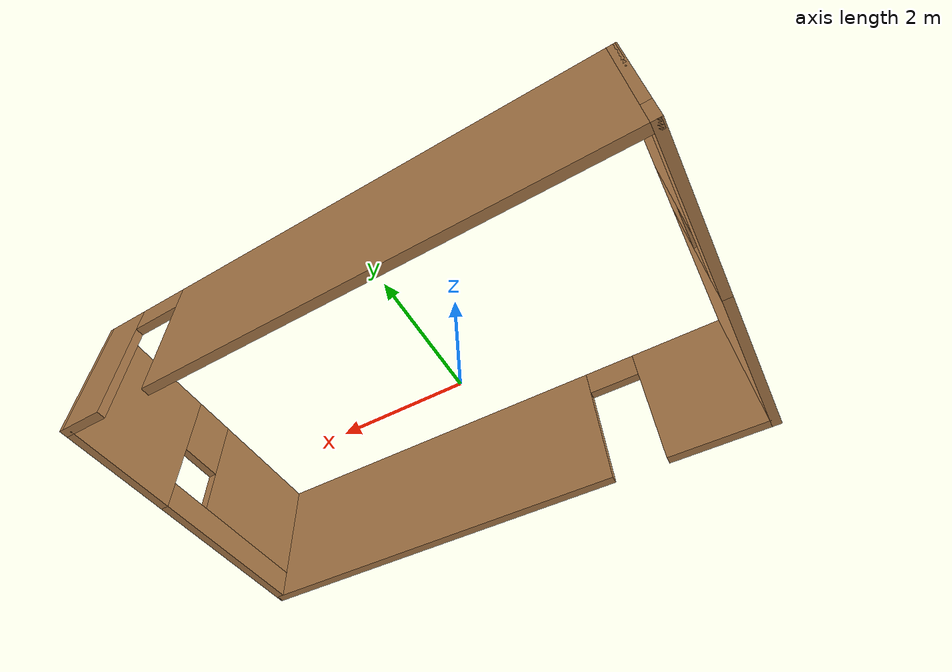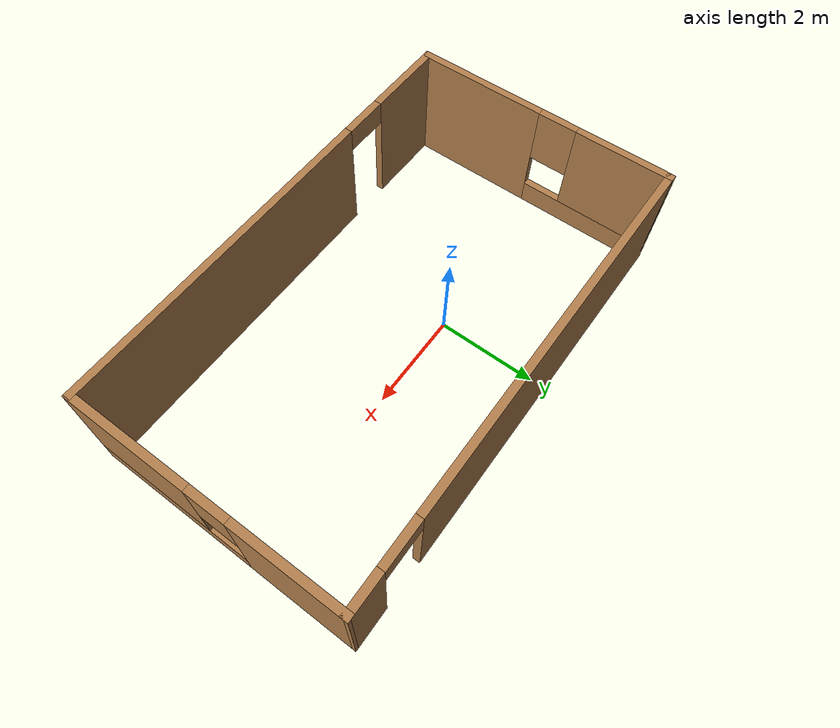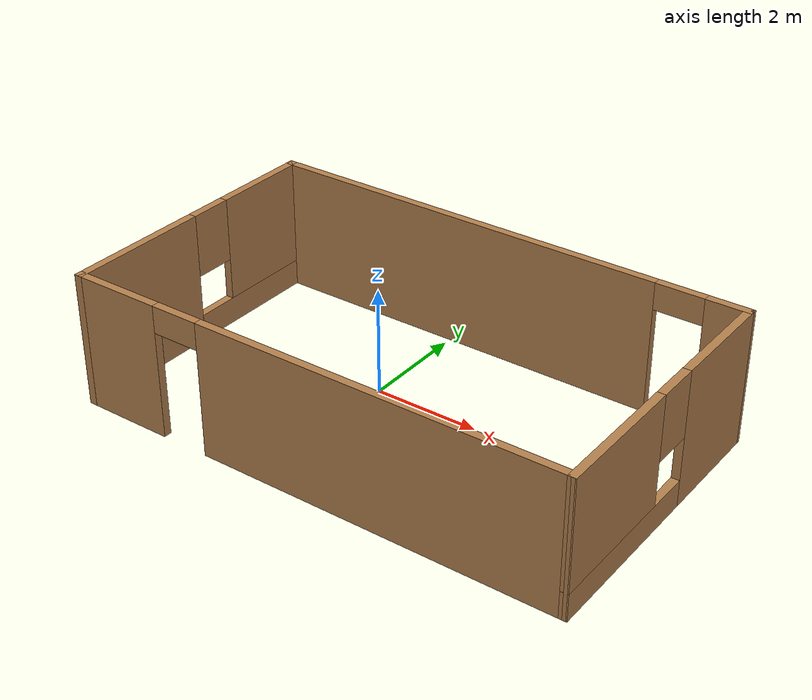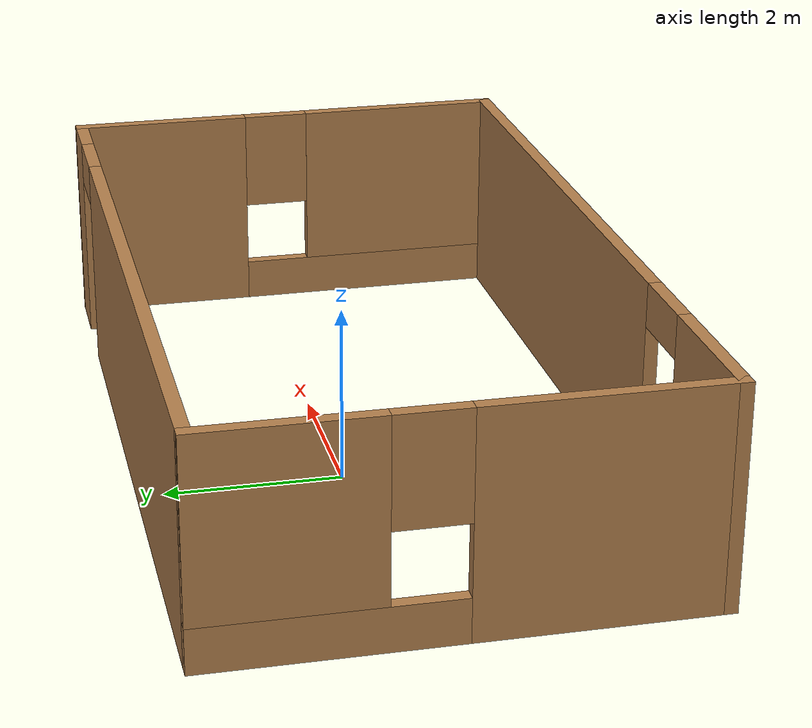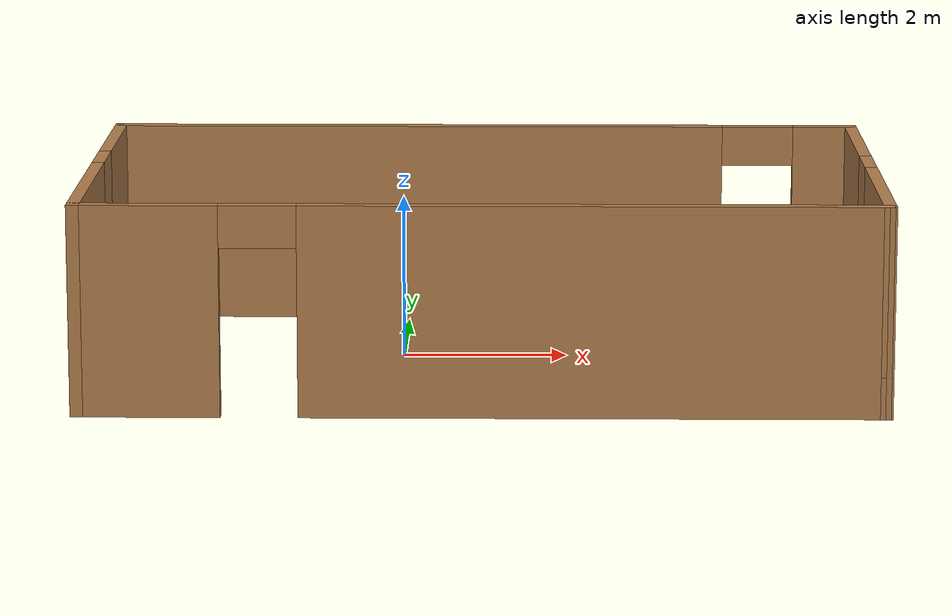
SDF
<?xml version='1.0'?>
<sdf version='1.7'>
  <model name='room'>
    <pose>0.989537 -0.455 0 0 -0 0</pose>
    <link name='Wall_10'>
      <pose>-0.011724 -2.675 0 0 -0 3.14159</pose>
      <visual name='Wall_10_Visual_0'>
        <pose>-1.32151 0 1.25 0 -0 0</pose>
        <geometry>
          <box>
            <size>6.85699 0.15 2.5</size>
          </box>
        </geometry>
        <material>
          <script>
            <uri>file://media/materials/scripts/gazebo.material</uri>
            <name>Gazebo/Wood</name>
          </script>
          <ambient>1 1 1 1</ambient>
        </material>
        <meta>
          <layer>0</layer>
        </meta>
      </visual>
      <collision name='Wall_10_Collision_0'>
        <geometry>
          <box>
            <size>6.85699 0.15 2.5</size>
          </box>
        </geometry>
        <pose>-1.32151 0 1.25 0 -0 0</pose>
      </collision>
      <visual name='Wall_10_Visual_1'>
        <pose>3.87849 0 1.25 0 -0 0</pose>
        <geometry>
          <box>
            <size>1.74301 0.15 2.5</size>
          </box>
        </geometry>
        <material>
          <script>
            <uri>file://media/materials/scripts/gazebo.material</uri>
            <name>Gazebo/Wood</name>
          </script>
          <ambient>1 1 1 1</ambient>
        </material>
        <meta>
          <layer>0</layer>
        </meta>
      </visual>
      <collision name='Wall_10_Collision_1'>
        <geometry>
          <box>
            <size>1.74301 0.15 2.5</size>
          </box>
        </geometry>
        <pose>3.87849 0 1.25 0 -0 0</pose>
      </collision>
      <visual name='Wall_10_Visual_2'>
        <pose>2.55699 0 2.25 0 -0 0</pose>
        <geometry>
          <box>
            <size>0.9 0.15 0.5</size>
          </box>
        </geometry>
        <material>
          <script>
            <uri>file://media/materials/scripts/gazebo.material</uri>
            <name>Gazebo/Wood</name>
          </script>
          <ambient>1 1 1 1</ambient>
        </material>
        <meta>
          <layer>0</layer>
        </meta>
      </visual>
      <collision name='Wall_10_Collision_2'>
        <geometry>
          <box>
            <size>0.9 0.15 0.5</size>
          </box>
        </geometry>
        <pose>2.55699 0 2.25 0 -0 0</pose>
      </collision>
    </link>
    <link name='Wall_7'>
      <pose>-4.68672 -0 0 0 -0 1.5708</pose>
      <visual name='Wall_7_Visual_0'>
        <pose>-1.39014 0 1.25 0 -0 0</pose>
        <geometry>
          <box>
            <size>2.71972 0.15 2.5</size>
          </box>
        </geometry>
        <material>
          <script>
            <uri>file://media/materials/scripts/gazebo.material</uri>
            <name>Gazebo/Wood</name>
          </script>
          <ambient>1 1 1 1</ambient>
        </material>
        <meta>
          <layer>0</layer>
        </meta>
      </visual>
      <collision name='Wall_7_Collision_0'>
        <geometry>
          <box>
            <size>2.71972 0.15 2.5</size>
          </box>
        </geometry>
        <pose>-1.39014 0 1.25 0 -0 0</pose>
      </collision>
      <visual name='Wall_7_Visual_1'>
        <pose>1.35986 0 0.25 0 -0 0</pose>
        <geometry>
          <box>
            <size>2.78028 0.15 0.5</size>
          </box>
        </geometry>
        <material>
          <script>
            <uri>file://media/materials/scripts/gazebo.material</uri>
            <name>Gazebo/Wood</name>
          </script>
          <ambient>1 1 1 1</ambient>
        </material>
        <meta>
          <layer>0</layer>
        </meta>
      </visual>
      <collision name='Wall_7_Collision_1'>
        <geometry>
          <box>
            <size>2.78028 0.15 0.5</size>
          </box>
        </geometry>
        <pose>1.35986 0 0.25 0 -0 0</pose>
      </collision>
      <visual name='Wall_7_Visual_2'>
        <pose>1.75986 0 1.5 0 -0 0</pose>
        <geometry>
          <box>
            <size>1.98028 0.15 2</size>
          </box>
        </geometry>
        <material>
          <script>
            <uri>file://media/materials/scripts/gazebo.material</uri>
            <name>Gazebo/Wood</name>
          </script>
          <ambient>1 1 1 1</ambient>
        </material>
        <meta>
          <layer>0</layer>
        </meta>
      </visual>
      <collision name='Wall_7_Collision_2'>
        <geometry>
          <box>
            <size>1.98028 0.15 2</size>
          </box>
        </geometry>
        <pose>1.75986 0 1.5 0 -0 0</pose>
      </collision>
      <visual name='Wall_7_Visual_3'>
        <pose>0.369722 0 1.9 0 -0 0</pose>
        <geometry>
          <box>
            <size>0.8 0.15 1.2</size>
          </box>
        </geometry>
        <material>
          <script>
            <uri>file://media/materials/scripts/gazebo.material</uri>
            <name>Gazebo/Wood</name>
          </script>
          <ambient>1 1 1 1</ambient>
        </material>
        <meta>
          <layer>0</layer>
        </meta>
      </visual>
      <collision name='Wall_7_Collision_3'>
        <geometry>
          <box>
            <size>0.8 0.15 1.2</size>
          </box>
        </geometry>
        <pose>0.369722 0 1.9 0 -0 0</pose>
      </collision>
    </link>
    <link name='Wall_8'>
      <pose>-0.011724 2.675 0 0 -0 0</pose>
      <visual name='Wall_8_Visual_0'>
        <pose>-0.855755 0 1.25 0 -0 0</pose>
        <geometry>
          <box>
            <size>7.74286 0.15 2.5</size>
          </box>
        </geometry>
        <material>
          <script>
            <uri>file://media/materials/scripts/gazebo.material</uri>
            <name>Gazebo/Wood</name>
          </script>
          <ambient>1 1 1 1</ambient>
        </material>
        <meta>
          <layer>0</layer>
        </meta>
      </visual>
      <collision name='Wall_8_Collision_0'>
        <geometry>
          <box>
            <size>7.74286 0.15 2.5</size>
          </box>
        </geometry>
        <pose>-0.855755 0 1.25 0 -0 0</pose>
      </collision>
      <visual name='Wall_8_Visual_1'>
        <pose>4.32143 0 1.25 0 -0 0</pose>
        <geometry>
          <box>
            <size>0.81151 0.15 2.5</size>
          </box>
        </geometry>
        <material>
          <script>
            <uri>file://media/materials/scripts/gazebo.material</uri>
            <name>Gazebo/Wood</name>
          </script>
          <ambient>1 1 1 1</ambient>
        </material>
        <meta>
          <layer>0</layer>
        </meta>
      </visual>
      <collision name='Wall_8_Collision_1'>
        <geometry>
          <box>
            <size>0.81151 0.15 2.5</size>
          </box>
        </geometry>
        <pose>4.32143 0 1.25 0 -0 0</pose>
      </collision>
      <visual name='Wall_8_Visual_2'>
        <pose>3.46568 0 2.25 0 -0 0</pose>
        <geometry>
          <box>
            <size>0.9 0.15 0.5</size>
          </box>
        </geometry>
        <material>
          <script>
            <uri>file://media/materials/scripts/gazebo.material</uri>
            <name>Gazebo/Wood</name>
          </script>
          <ambient>1 1 1 1</ambient>
        </material>
        <meta>
          <layer>0</layer>
        </meta>
      </visual>
      <collision name='Wall_8_Collision_2'>
        <geometry>
          <box>
            <size>0.9 0.15 0.5</size>
          </box>
        </geometry>
        <pose>3.46568 0 2.25 0 -0 0</pose>
      </collision>
    </link>
    <link name='Wall_9'>
      <pose>4.66327 -0 0 0 -0 -1.56227</pose>
      <visual name='Wall_9_Visual_0'>
        <pose>-1.65701 0 1.25 0 -0 0</pose>
        <geometry>
          <box>
            <size>2.18599 0.15 2.5</size>
          </box>
        </geometry>
        <material>
          <script>
            <uri>file://media/materials/scripts/gazebo.material</uri>
            <name>Gazebo/Wood</name>
          </script>
          <ambient>1 1 1 1</ambient>
        </material>
        <meta>
          <layer>0</layer>
        </meta>
      </visual>
      <collision name='Wall_9_Collision_0'>
        <geometry>
          <box>
            <size>2.18599 0.15 2.5</size>
          </box>
        </geometry>
        <pose>-1.65701 0 1.25 0 -0 0</pose>
      </collision>
      <visual name='Wall_9_Visual_1'>
        <pose>1.09299 0 0.25 0 -0 0</pose>
        <geometry>
          <box>
            <size>3.31401 0.15 0.5</size>
          </box>
        </geometry>
        <material>
          <script>
            <uri>file://media/materials/scripts/gazebo.material</uri>
            <name>Gazebo/Wood</name>
          </script>
          <ambient>1 1 1 1</ambient>
        </material>
        <meta>
          <layer>0</layer>
        </meta>
      </visual>
      <collision name='Wall_9_Collision_1'>
        <geometry>
          <box>
            <size>3.31401 0.15 0.5</size>
          </box>
        </geometry>
        <pose>1.09299 0 0.25 0 -0 0</pose>
      </collision>
      <visual name='Wall_9_Visual_2'>
        <pose>1.493 0 1.5 0 -0 0</pose>
        <geometry>
          <box>
            <size>2.51401 0.15 2</size>
          </box>
        </geometry>
        <material>
          <script>
            <uri>file://media/materials/scripts/gazebo.material</uri>
            <name>Gazebo/Wood</name>
          </script>
          <ambient>1 1 1 1</ambient>
        </material>
        <meta>
          <layer>0</layer>
        </meta>
      </visual>
      <collision name='Wall_9_Collision_2'>
        <geometry>
          <box>
            <size>2.51401 0.15 2</size>
          </box>
        </geometry>
        <pose>1.493 0 1.5 0 -0 0</pose>
      </collision>
      <visual name='Wall_9_Visual_3'>
        <pose>-0.164011 0 1.9 0 -0 0</pose>
        <geometry>
          <box>
            <size>0.8 0.15 1.2</size>
          </box>
        </geometry>
        <material>
          <script>
            <uri>file://media/materials/scripts/gazebo.material</uri>
            <name>Gazebo/Wood</name>
          </script>
          <ambient>1 1 1 1</ambient>
        </material>
        <meta>
          <layer>0</layer>
        </meta>
      </visual>
      <collision name='Wall_9_Collision_3'>
        <geometry>
          <box>
            <size>0.8 0.15 1.2</size>
          </box>
        </geometry>
        <pose>-0.164011 0 1.9 0 -0 0</pose>
      </collision>
    </link>
    <static>1</static>
  </model>
</sdf>
